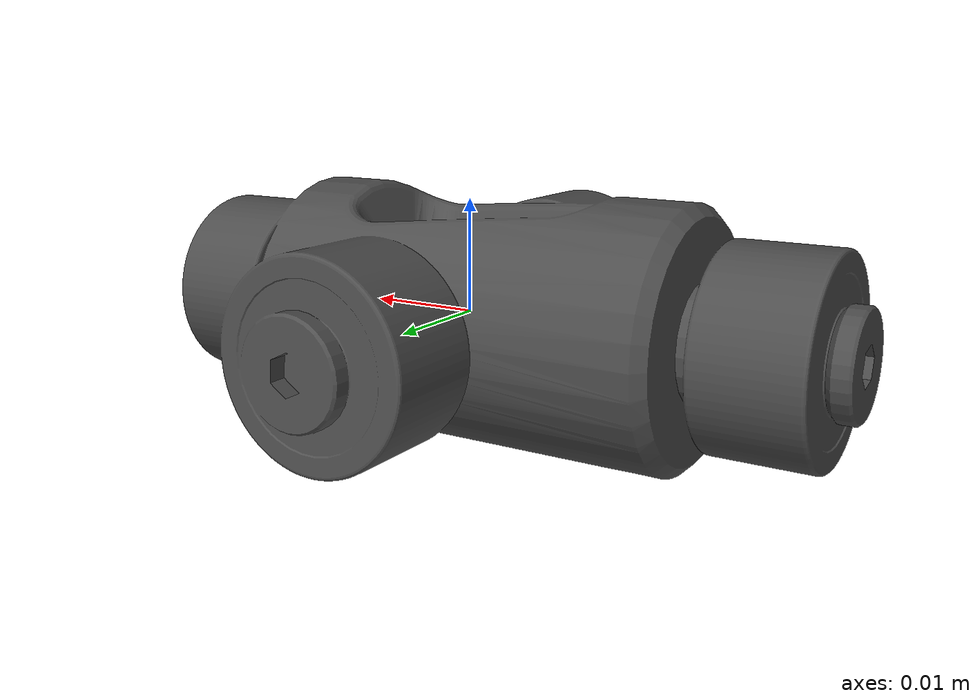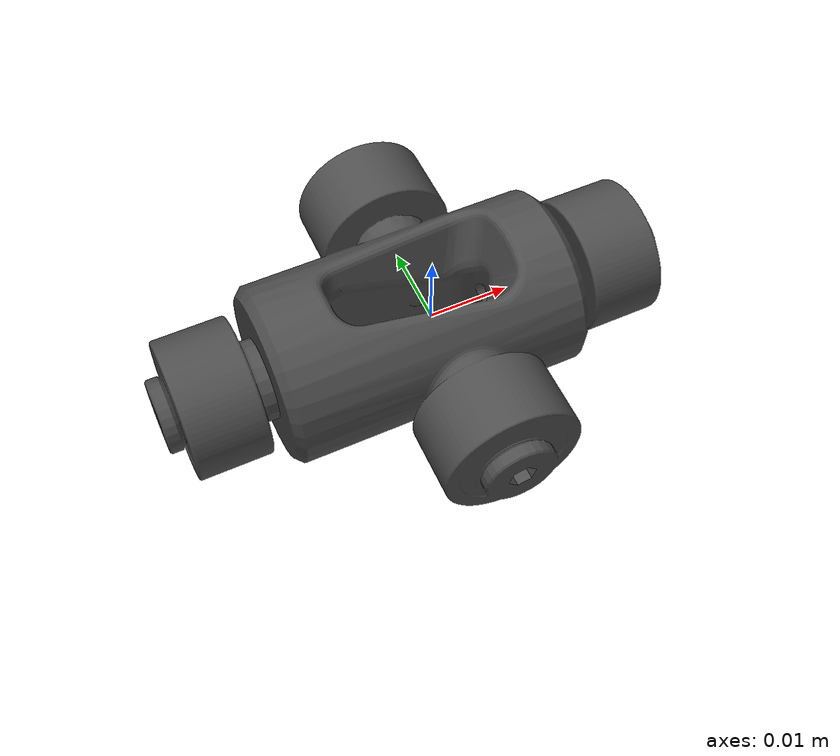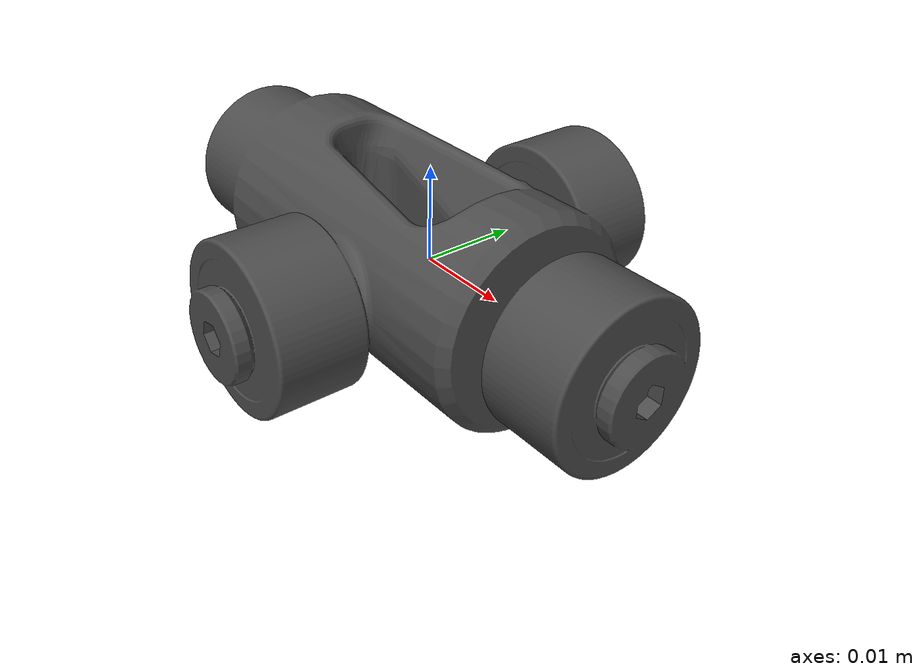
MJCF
<mujoco model="leg_ankle_cross">
  <default>
    <default class="visual">
      <geom group="2" type="mesh" contype="0" conaffinity="0"/>
    </default>
    <default class="collision">
      <geom group="3" type="mesh"/>
    </default>
  </default>
  <asset>
    <material name="mtl_leg_ankle_cross" specular="0.20000000000000004" shininess="1.0" rgba="0.29803922 0.29803922 0.29803922 1.0"/>
    <mesh file="leg_ankle_cross.obj"/>
  </asset>
  <worldbody>
    <body name="leg_ankle_cross">
      <geom material="mtl_leg_ankle_cross" mesh="leg_ankle_cross" class="visual"/>
      <geom mesh="leg_ankle_cross" class="collision"/>
    </body>
  </worldbody>
</mujoco>
